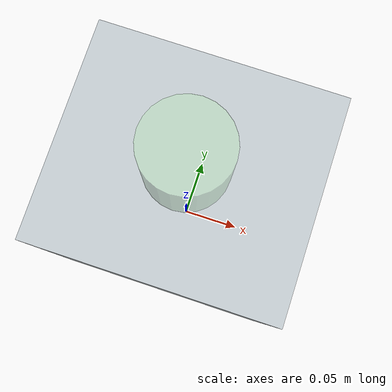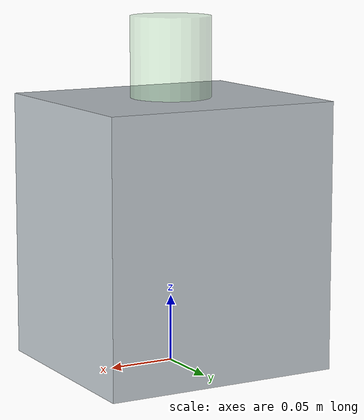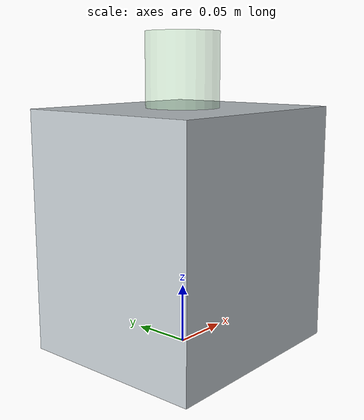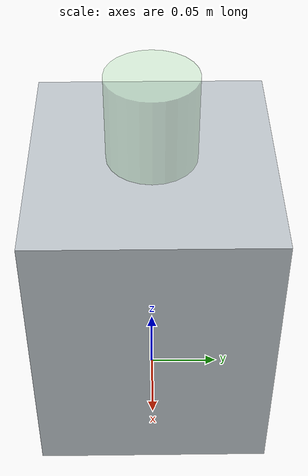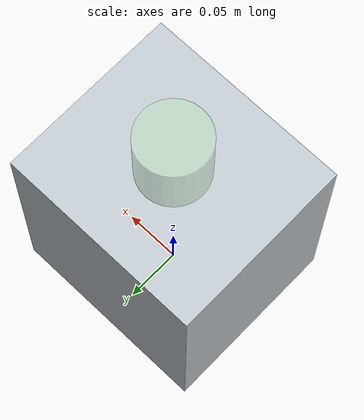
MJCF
<?xml version="1.0" encoding="utf-8"?>
<mujoco model="electrolyte_filling_station">
  <compiler angle="radian" autolimits="true"/>
  <default>
    <default class="body"><geom contype="1" conaffinity="1"/></default>
  </default>
  <worldbody>
    <body name="base">
      <geom type="box" size="0.09 0.08 0.1" pos="0 0 0.1" rgba="0.75 0.78 0.8 1" class="body"/>
      <geom type="box" size="0.027 0.004 0.025" pos="-0.045 -0.07200000000000001 0.15000000000000002" rgba="0.9 0.7 0.1 1" class="body"/>
      <body name="dispense_nozzle" pos="0 0 0.20">
        <joint name="dispense_nozzle_joint" type="slide" axis="0 0 1" range="-0.05 0" damping="1.0" frictionloss="0.5"/>
  <geom type="cylinder" size="0.03 0.06" pos="0 0 0" rgba="0.7 0.9 0.7 0.4" class="body"/>
      </body>
    </body>
  </worldbody>
</mujoco>
